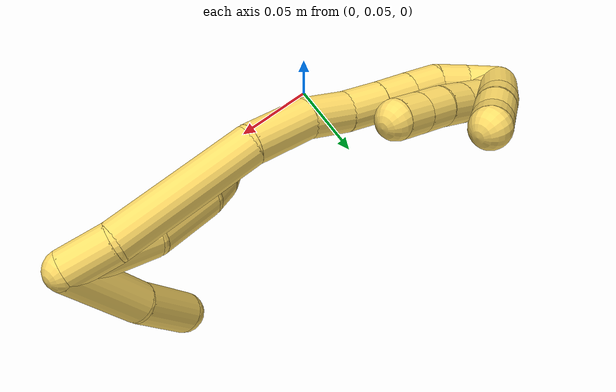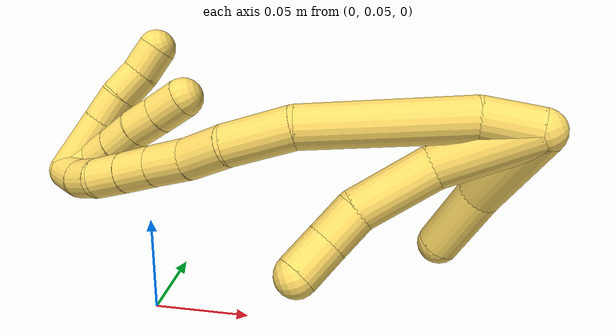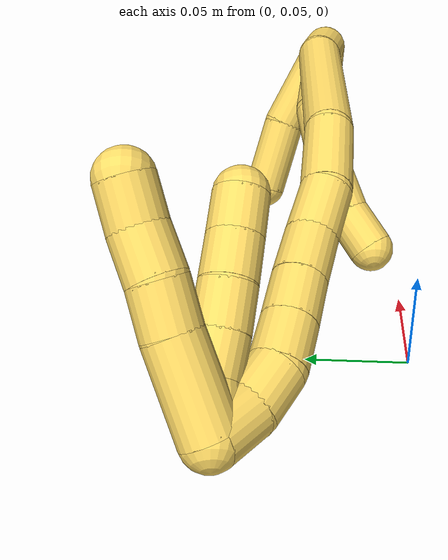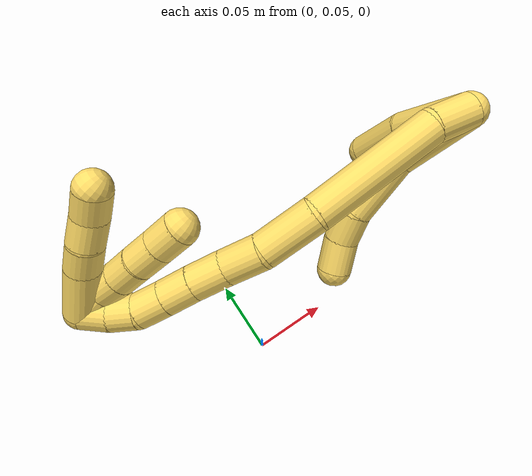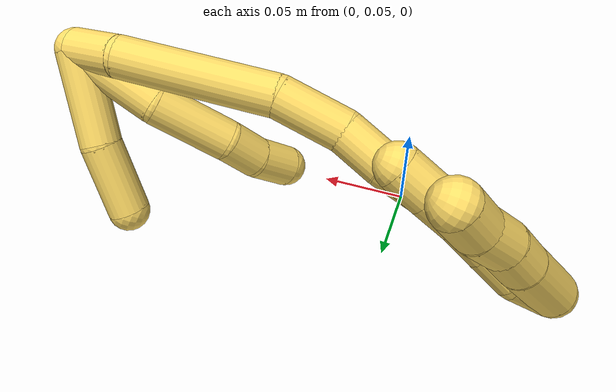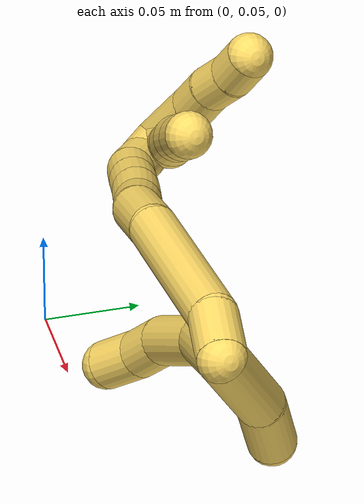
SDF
<sdf version="1.7">
 <world name="default">
  <model name="5">
   <static>0</static>
   <link name="5">
    <collision name="collision-cylinder-e_1_2_8">
     <pose>-0.002029 0.005398 -0.027162 -2.94541 -0.07314 0.711881</pose>
     <geometry><cylinder><radius>0.0125</radius><length>0.055536</length></cylinder></geometry>
     <surface>
      <friction><ode><mu>1.16</mu><mu2>1.16</mu2><slip1>0</slip1><slip2>0</slip2></ode></friction>
      <contact><ode><kp>1e+06</kp><kd>1</kd><max_vel>0</max_vel><min_depth>0.001</min_depth></ode></contact>
     </surface>
    </collision>
    <visual name="visual-cylinder-e_1_2_8">
     <pose>-0.002029 0.005398 -0.027162 -2.94541 -0.07314 0.711881</pose>
     <geometry><cylinder><radius>0.0125</radius><length>0.055536</length></cylinder></geometry>
     <material><ambient>1 0.858824 0.4 1</ambient></material>
    </visual>
    <collision name="collision-cylinder-e_2_8_9">
     <pose>-6.4e-05 0.010925 -0.077373 -3.13603 0.171599 -3.07697</pose>
     <geometry><cylinder><radius>0.0125</radius><length>0.046783</length></cylinder></geometry>
     <surface>
      <friction><ode><mu>1.16</mu><mu2>1.16</mu2><slip1>0</slip1><slip2>0</slip2></ode></friction>
      <contact><ode><kp>1e+06</kp><kd>1</kd><max_vel>0</max_vel><min_depth>0.001</min_depth></ode></contact>
     </surface>
    </collision>
    <visual name="visual-cylinder-e_2_8_9">
     <pose>-6.4e-05 0.010925 -0.077373 -3.13603 0.171599 -3.07697</pose>
     <geometry><cylinder><radius>0.0125</radius><length>0.046783</length></cylinder></geometry>
     <material><ambient>1 0.858824 0.4 1</ambient></material>
    </visual>
    <collision name="collision-cylinder-e_3_9_10">
     <pose>0.009399 0.010904 -0.110755 3.12715 0.486661 3.08343</pose>
     <geometry><cylinder><radius>0.0125</radius><length>0.023387</length></cylinder></geometry>
     <surface>
      <friction><ode><mu>1.16</mu><mu2>1.16</mu2><slip1>0</slip1><slip2>0</slip2></ode></friction>
      <contact><ode><kp>1e+06</kp><kd>1</kd><max_vel>0</max_vel><min_depth>0.001</min_depth></ode></contact>
     </surface>
    </collision>
    <visual name="visual-cylinder-e_3_9_10">
     <pose>0.009399 0.010904 -0.110755 3.12715 0.486661 3.08343</pose>
     <geometry><cylinder><radius>0.0125</radius><length>0.023387</length></cylinder></geometry>
     <material><ambient>1 0.858824 0.4 1</ambient></material>
    </visual>
    <collision name="collision-cylinder-e_4_10_6">
     <pose>0.020965 0.007948 -0.131214 2.87119 0.525831 2.20566</pose>
     <geometry><cylinder><radius>0.0125</radius><length>0.024294</length></cylinder></geometry>
     <surface>
      <friction><ode><mu>1.16</mu><mu2>1.16</mu2><slip1>0</slip1><slip2>0</slip2></ode></friction>
      <contact><ode><kp>1e+06</kp><kd>1</kd><max_vel>0</max_vel><min_depth>0.001</min_depth></ode></contact>
     </surface>
    </collision>
    <visual name="visual-cylinder-e_4_10_6">
     <pose>0.020965 0.007948 -0.131214 2.87119 0.525831 2.20566</pose>
     <geometry><cylinder><radius>0.0125</radius><length>0.024294</length></cylinder></geometry>
     <material><ambient>1 0.858824 0.4 1</ambient></material>
    </visual>
    <collision name="collision-cylinder-e_1_2_11">
     <pose>0.006256 0.021532 -0.017381 -2.24993 0.222337 -0.45891</pose>
     <geometry><cylinder><radius>0.0125</radius><length>0.05674</length></cylinder></geometry>
     <surface>
      <friction><ode><mu>1.16</mu><mu2>1.16</mu2><slip1>0</slip1><slip2>0</slip2></ode></friction>
      <contact><ode><kp>1e+06</kp><kd>1</kd><max_vel>0</max_vel><min_depth>0.001</min_depth></ode></contact>
     </surface>
    </collision>
    <visual name="visual-cylinder-e_1_2_11">
     <pose>0.006256 0.021532 -0.017381 -2.24993 0.222337 -0.45891</pose>
     <geometry><cylinder><radius>0.0125</radius><length>0.05674</length></cylinder></geometry>
     <material><ambient>1 0.858824 0.4 1</ambient></material>
    </visual>
    <collision name="collision-cylinder-e_2_11_5">
     <pose>0.020015 0.056678 -0.049802 -2.40593 0.354279 -0.869741</pose>
     <geometry><cylinder><radius>0.0125</radius><length>0.04326</length></cylinder></geometry>
     <surface>
      <friction><ode><mu>1.16</mu><mu2>1.16</mu2><slip1>0</slip1><slip2>0</slip2></ode></friction>
      <contact><ode><kp>1e+06</kp><kd>1</kd><max_vel>0</max_vel><min_depth>0.001</min_depth></ode></contact>
     </surface>
    </collision>
    <visual name="visual-cylinder-e_2_11_5">
     <pose>0.020015 0.056678 -0.049802 -2.40593 0.354279 -0.869741</pose>
     <geometry><cylinder><radius>0.0125</radius><length>0.04326</length></cylinder></geometry>
     <material><ambient>1 0.858824 0.4 1</ambient></material>
    </visual>
    <collision name="collision-cylinder-e_1_2_12">
     <pose>-0.008344 -0.000999 -0.012711 3.06314 -0.579495 -2.87983</pose>
     <geometry><cylinder><radius>0.0125</radius><length>0.030475</length></cylinder></geometry>
     <surface>
      <friction><ode><mu>1.16</mu><mu2>1.16</mu2><slip1>0</slip1><slip2>0</slip2></ode></friction>
      <contact><ode><kp>1e+06</kp><kd>1</kd><max_vel>0</max_vel><min_depth>0.001</min_depth></ode></contact>
     </surface>
    </collision>
    <visual name="visual-cylinder-e_1_2_12">
     <pose>-0.008344 -0.000999 -0.012711 3.06314 -0.579495 -2.87983</pose>
     <geometry><cylinder><radius>0.0125</radius><length>0.030475</length></cylinder></geometry>
     <material><ambient>1 0.858824 0.4 1</ambient></material>
    </visual>
    <collision name="collision-cylinder-e_2_12_13">
     <pose>-0.030648 -0.007201 -0.070048 3.02554 -0.301256 -2.4105</pose>
     <geometry><cylinder><radius>0.0125</radius><length>0.094095</length></cylinder></geometry>
     <surface>
      <friction><ode><mu>1.16</mu><mu2>1.16</mu2><slip1>0</slip1><slip2>0</slip2></ode></friction>
      <contact><ode><kp>1e+06</kp><kd>1</kd><max_vel>0</max_vel><min_depth>0.001</min_depth></ode></contact>
     </surface>
    </collision>
    <visual name="visual-cylinder-e_2_12_13">
     <pose>-0.030648 -0.007201 -0.070048 3.02554 -0.301256 -2.4105</pose>
     <geometry><cylinder><radius>0.0125</radius><length>0.094095</length></cylinder></geometry>
     <material><ambient>1 0.858824 0.4 1</ambient></material>
    </visual>
    <collision name="collision-cylinder-e_3_13_14">
     <pose>-0.047543 -0.010558 -0.134557 -3.04907 -0.145937 2.01244</pose>
     <geometry><cylinder><radius>0.0125</radius><length>0.040365</length></cylinder></geometry>
     <surface>
      <friction><ode><mu>1.16</mu><mu2>1.16</mu2><slip1>0</slip1><slip2>0</slip2></ode></friction>
      <contact><ode><kp>1e+06</kp><kd>1</kd><max_vel>0</max_vel><min_depth>0.001</min_depth></ode></contact>
     </surface>
    </collision>
    <visual name="visual-cylinder-e_3_13_14">
     <pose>-0.047543 -0.010558 -0.134557 -3.04907 -0.145937 2.01244</pose>
     <geometry><cylinder><radius>0.0125</radius><length>0.040365</length></cylinder></geometry>
     <material><ambient>1 0.858824 0.4 1</ambient></material>
    </visual>
    <collision name="collision-cylinder-e_4_14_15">
     <pose>-0.052534 -0.004258 -0.167284 -2.80773 -0.150105 0.839475</pose>
     <geometry><cylinder><radius>0.0125</radius><length>0.027501</length></cylinder></geometry>
     <surface>
      <friction><ode><mu>1.16</mu><mu2>1.16</mu2><slip1>0</slip1><slip2>0</slip2></ode></friction>
      <contact><ode><kp>1e+06</kp><kd>1</kd><max_vel>0</max_vel><min_depth>0.001</min_depth></ode></contact>
     </surface>
    </collision>
    <visual name="visual-cylinder-e_4_14_15">
     <pose>-0.052534 -0.004258 -0.167284 -2.80773 -0.150105 0.839475</pose>
     <geometry><cylinder><radius>0.0125</radius><length>0.027501</length></cylinder></geometry>
     <material><ambient>1 0.858824 0.4 1</ambient></material>
    </visual>
    <collision name="collision-cylinder-e_5_15_16">
     <pose>-0.057492 0.002913 -0.191772 -2.91239 -0.238108 1.60925</pose>
     <geometry><cylinder><radius>0.0125</radius><length>0.024605</length></cylinder></geometry>
     <surface>
      <friction><ode><mu>1.16</mu><mu2>1.16</mu2><slip1>0</slip1><slip2>0</slip2></ode></friction>
      <contact><ode><kp>1e+06</kp><kd>1</kd><max_vel>0</max_vel><min_depth>0.001</min_depth></ode></contact>
     </surface>
    </collision>
    <visual name="visual-cylinder-e_5_15_16">
     <pose>-0.057492 0.002913 -0.191772 -2.91239 -0.238108 1.60925</pose>
     <geometry><cylinder><radius>0.0125</radius><length>0.024605</length></cylinder></geometry>
     <material><ambient>1 0.858824 0.4 1</ambient></material>
    </visual>
    <collision name="collision-cylinder-e_6_16_17">
     <pose>-0.062691 0.007792 -0.213849 -2.93727 -0.212289 1.6093</pose>
     <geometry><cylinder><radius>0.0125</radius><length>0.021803</length></cylinder></geometry>
     <surface>
      <friction><ode><mu>1.16</mu><mu2>1.16</mu2><slip1>0</slip1><slip2>0</slip2></ode></friction>
      <contact><ode><kp>1e+06</kp><kd>1</kd><max_vel>0</max_vel><min_depth>0.001</min_depth></ode></contact>
     </surface>
    </collision>
    <visual name="visual-cylinder-e_6_16_17">
     <pose>-0.062691 0.007792 -0.213849 -2.93727 -0.212289 1.6093</pose>
     <geometry><cylinder><radius>0.0125</radius><length>0.021803</length></cylinder></geometry>
     <material><ambient>1 0.858824 0.4 1</ambient></material>
    </visual>
    <collision name="collision-cylinder-e_7_17_18">
     <pose>-0.067407 0.012162 -0.234291 -2.9244 -0.231811 1.63643</pose>
     <geometry><cylinder><radius>0.0125</radius><length>0.021059</length></cylinder></geometry>
     <surface>
      <friction><ode><mu>1.16</mu><mu2>1.16</mu2><slip1>0</slip1><slip2>0</slip2></ode></friction>
      <contact><ode><kp>1e+06</kp><kd>1</kd><max_vel>0</max_vel><min_depth>0.001</min_depth></ode></contact>
     </surface>
    </collision>
    <visual name="visual-cylinder-e_7_17_18">
     <pose>-0.067407 0.012162 -0.234291 -2.9244 -0.231811 1.63643</pose>
     <geometry><cylinder><radius>0.0125</radius><length>0.021059</length></cylinder></geometry>
     <material><ambient>1 0.858824 0.4 1</ambient></material>
    </visual>
    <collision name="collision-cylinder-e_8_18_19">
     <pose>-0.073732 0.018988 -0.252295 -2.61799 -0.400215 1.29586</pose>
     <geometry><cylinder><radius>0.0125</radius><length>0.020053</length></cylinder></geometry>
     <surface>
      <friction><ode><mu>1.16</mu><mu2>1.16</mu2><slip1>0</slip1><slip2>0</slip2></ode></friction>
      <contact><ode><kp>1e+06</kp><kd>1</kd><max_vel>0</max_vel><min_depth>0.001</min_depth></ode></contact>
     </surface>
    </collision>
    <visual name="visual-cylinder-e_8_18_19">
     <pose>-0.073732 0.018988 -0.252295 -2.61799 -0.400215 1.29586</pose>
     <geometry><cylinder><radius>0.0125</radius><length>0.020053</length></cylinder></geometry>
     <material><ambient>1 0.858824 0.4 1</ambient></material>
    </visual>
    <collision name="collision-cylinder-e_9_19_1">
     <pose>-0.083984 0.028094 -0.26662 -2.52451 -0.685568 1.68362</pose>
     <geometry><cylinder><radius>0.0125</radius><length>0.020045</length></cylinder></geometry>
     <surface>
      <friction><ode><mu>1.16</mu><mu2>1.16</mu2><slip1>0</slip1><slip2>0</slip2></ode></friction>
      <contact><ode><kp>1e+06</kp><kd>1</kd><max_vel>0</max_vel><min_depth>0.001</min_depth></ode></contact>
     </surface>
    </collision>
    <visual name="visual-cylinder-e_9_19_1">
     <pose>-0.083984 0.028094 -0.26662 -2.52451 -0.685568 1.68362</pose>
     <geometry><cylinder><radius>0.0125</radius><length>0.020045</length></cylinder></geometry>
     <material><ambient>1 0.858824 0.4 1</ambient></material>
    </visual>
    <collision name="collision-cylinder-e_1_1_20">
     <pose>-0.090443 0.032527 -0.262948 0.005633 -0.011394 -3.2e-05</pose>
     <geometry><cylinder><radius>0.0125</radius><length>0.02</length></cylinder></geometry>
     <surface>
      <friction><ode><mu>1.16</mu><mu2>1.16</mu2><slip1>0</slip1><slip2>0</slip2></ode></friction>
      <contact><ode><kp>1e+06</kp><kd>1</kd><max_vel>0</max_vel><min_depth>0.001</min_depth></ode></contact>
     </surface>
    </collision>
    <visual name="visual-cylinder-e_1_1_20">
     <pose>-0.090443 0.032527 -0.262948 0.005633 -0.011394 -3.2e-05</pose>
     <geometry><cylinder><radius>0.0125</radius><length>0.02</length></cylinder></geometry>
     <material><ambient>1 0.858824 0.4 1</ambient></material>
    </visual>
    <collision name="collision-cylinder-e_2_20_21">
     <pose>-0.091072 0.029165 -0.243525 0.337415 -0.05148 -0.00877</pose>
     <geometry><cylinder><radius>0.0125</radius><length>0.02</length></cylinder></geometry>
     <surface>
      <friction><ode><mu>1.16</mu><mu2>1.16</mu2><slip1>0</slip1><slip2>0</slip2></ode></friction>
      <contact><ode><kp>1e+06</kp><kd>1</kd><max_vel>0</max_vel><min_depth>0.001</min_depth></ode></contact>
     </surface>
    </collision>
    <visual name="visual-cylinder-e_2_20_21">
     <pose>-0.091072 0.029165 -0.243525 0.337415 -0.05148 -0.00877</pose>
     <geometry><cylinder><radius>0.0125</radius><length>0.02</length></cylinder></geometry>
     <material><ambient>1 0.858824 0.4 1</ambient></material>
    </visual>
    <collision name="collision-cylinder-e_3_21_22">
     <pose>-0.092763 0.022697 -0.224688 0.324058 -0.117907 -0.019295</pose>
     <geometry><cylinder><radius>0.0125</radius><length>0.02</length></cylinder></geometry>
     <surface>
      <friction><ode><mu>1.16</mu><mu2>1.16</mu2><slip1>0</slip1><slip2>0</slip2></ode></friction>
      <contact><ode><kp>1e+06</kp><kd>1</kd><max_vel>0</max_vel><min_depth>0.001</min_depth></ode></contact>
     </surface>
    </collision>
    <visual name="visual-cylinder-e_3_21_22">
     <pose>-0.092763 0.022697 -0.224688 0.324058 -0.117907 -0.019295</pose>
     <geometry><cylinder><radius>0.0125</radius><length>0.02</length></cylinder></geometry>
     <material><ambient>1 0.858824 0.4 1</ambient></material>
    </visual>
    <collision name="collision-cylinder-e_4_22_23">
     <pose>-0.09444 0.01703 -0.205605 0.25345 -0.050151 -0.006391</pose>
     <geometry><cylinder><radius>0.0125</radius><length>0.02</length></cylinder></geometry>
     <surface>
      <friction><ode><mu>1.16</mu><mu2>1.16</mu2><slip1>0</slip1><slip2>0</slip2></ode></friction>
      <contact><ode><kp>1e+06</kp><kd>1</kd><max_vel>0</max_vel><min_depth>0.001</min_depth></ode></contact>
     </surface>
    </collision>
    <visual name="visual-cylinder-e_4_22_23">
     <pose>-0.09444 0.01703 -0.205605 0.25345 -0.050151 -0.006391</pose>
     <geometry><cylinder><radius>0.0125</radius><length>0.02</length></cylinder></geometry>
     <material><ambient>1 0.858824 0.4 1</ambient></material>
    </visual>
    <collision name="collision-cylinder-e_5_23_4">
     <pose>-0.095662 0.011962 -0.186298 0.259933 -0.072076 -0.009425</pose>
     <geometry><cylinder><radius>0.0125</radius><length>0.02</length></cylinder></geometry>
     <surface>
      <friction><ode><mu>1.16</mu><mu2>1.16</mu2><slip1>0</slip1><slip2>0</slip2></ode></friction>
      <contact><ode><kp>1e+06</kp><kd>1</kd><max_vel>0</max_vel><min_depth>0.001</min_depth></ode></contact>
     </surface>
    </collision>
    <visual name="visual-cylinder-e_5_23_4">
     <pose>-0.095662 0.011962 -0.186298 0.259933 -0.072076 -0.009425</pose>
     <geometry><cylinder><radius>0.0125</radius><length>0.02</length></cylinder></geometry>
     <material><ambient>1 0.858824 0.4 1</ambient></material>
    </visual>
    <collision name="collision-cylinder-e_1_1_24">
     <pose>-0.102114 0.03199 -0.257336 0.038014 -0.646255 -0.012731</pose>
     <geometry><cylinder><radius>0.0125</radius><length>0.039137</length></cylinder></geometry>
     <surface>
      <friction><ode><mu>1.16</mu><mu2>1.16</mu2><slip1>0</slip1><slip2>0</slip2></ode></friction>
      <contact><ode><kp>1e+06</kp><kd>1</kd><max_vel>0</max_vel><min_depth>0.001</min_depth></ode></contact>
     </surface>
    </collision>
    <visual name="visual-cylinder-e_1_1_24">
     <pose>-0.102114 0.03199 -0.257336 0.038014 -0.646255 -0.012731</pose>
     <geometry><cylinder><radius>0.0125</radius><length>0.039137</length></cylinder></geometry>
     <material><ambient>1 0.858824 0.4 1</ambient></material>
    </visual>
    <collision name="collision-cylinder-e_2_24_25">
     <pose>-0.119593 0.030394 -0.233371 0.119398 -0.595108 -0.036654</pose>
     <geometry><cylinder><radius>0.0125</radius><length>0.02032</length></cylinder></geometry>
     <surface>
      <friction><ode><mu>1.16</mu><mu2>1.16</mu2><slip1>0</slip1><slip2>0</slip2></ode></friction>
      <contact><ode><kp>1e+06</kp><kd>1</kd><max_vel>0</max_vel><min_depth>0.001</min_depth></ode></contact>
     </surface>
    </collision>
    <visual name="visual-cylinder-e_2_24_25">
     <pose>-0.119593 0.030394 -0.233371 0.119398 -0.595108 -0.036654</pose>
     <geometry><cylinder><radius>0.0125</radius><length>0.02032</length></cylinder></geometry>
     <material><ambient>1 0.858824 0.4 1</ambient></material>
    </visual>
    <collision name="collision-cylinder-e_3_25_26">
     <pose>-0.130396 0.029861 -0.216133 -0.052747 -0.521105 0.014066</pose>
     <geometry><cylinder><radius>0.0125</radius><length>0.020516</length></cylinder></geometry>
     <surface>
      <friction><ode><mu>1.16</mu><mu2>1.16</mu2><slip1>0</slip1><slip2>0</slip2></ode></friction>
      <contact><ode><kp>1e+06</kp><kd>1</kd><max_vel>0</max_vel><min_depth>0.001</min_depth></ode></contact>
     </surface>
    </collision>
    <visual name="visual-cylinder-e_3_25_26">
     <pose>-0.130396 0.029861 -0.216133 -0.052747 -0.521105 0.014066</pose>
     <geometry><cylinder><radius>0.0125</radius><length>0.020516</length></cylinder></geometry>
     <material><ambient>1 0.858824 0.4 1</ambient></material>
    </visual>
    <collision name="collision-cylinder-e_4_26_3">
     <pose>-0.141201 0.029298 -0.19908 0.125642 -0.605313 -0.039278</pose>
     <geometry><cylinder><radius>0.0125</radius><length>0.020027</length></cylinder></geometry>
     <surface>
      <friction><ode><mu>1.16</mu><mu2>1.16</mu2><slip1>0</slip1><slip2>0</slip2></ode></friction>
      <contact><ode><kp>1e+06</kp><kd>1</kd><max_vel>0</max_vel><min_depth>0.001</min_depth></ode></contact>
     </surface>
    </collision>
    <visual name="visual-cylinder-e_4_26_3">
     <pose>-0.141201 0.029298 -0.19908 0.125642 -0.605313 -0.039278</pose>
     <geometry><cylinder><radius>0.0125</radius><length>0.020027</length></cylinder></geometry>
     <material><ambient>1 0.858824 0.4 1</ambient></material>
    </visual>
    <collision name="collision-sphere-3">
     <pose>-0.146899 0.028266 -0.190911 0 -0 0</pose>
     <geometry><sphere><radius>0.0125</radius></sphere></geometry>
     <surface>
      <friction><ode><mu>1.16</mu><mu2>1.16</mu2><slip1>0</slip1><slip2>0</slip2></ode></friction>
      <contact><ode><kp>1e+06</kp><kd>1</kd><max_vel>0</max_vel><min_depth>0.001</min_depth></ode></contact>
     </surface>
    </collision>
    <visual name="visual-sphere-3">
     <pose>-0.146899 0.028266 -0.190911 0 -0 0</pose>
     <geometry><sphere><radius>0.0125</radius></sphere></geometry>
     <material><ambient>1 0.858824 0.4 1</ambient></material>
    </visual>
    <collision name="collision-sphere-26">
     <pose>-0.135503 0.03033 -0.207249 0 -0 0</pose>
     <geometry><sphere><radius>0.0125</radius></sphere></geometry>
     <surface>
      <friction><ode><mu>1.16</mu><mu2>1.16</mu2><slip1>0</slip1><slip2>0</slip2></ode></friction>
      <contact><ode><kp>1e+06</kp><kd>1</kd><max_vel>0</max_vel><min_depth>0.001</min_depth></ode></contact>
     </surface>
    </collision>
    <visual name="visual-sphere-26">
     <pose>-0.135503 0.03033 -0.207249 0 -0 0</pose>
     <geometry><sphere><radius>0.0125</radius></sphere></geometry>
     <material><ambient>1 0.858824 0.4 1</ambient></material>
    </visual>
    <collision name="collision-sphere-25">
     <pose>-0.125289 0.029392 -0.225018 0 -0 0</pose>
     <geometry><sphere><radius>0.0125</radius></sphere></geometry>
     <surface>
      <friction><ode><mu>1.16</mu><mu2>1.16</mu2><slip1>0</slip1><slip2>0</slip2></ode></friction>
      <contact><ode><kp>1e+06</kp><kd>1</kd><max_vel>0</max_vel><min_depth>0.001</min_depth></ode></contact>
     </surface>
    </collision>
    <visual name="visual-sphere-25">
     <pose>-0.125289 0.029392 -0.225018 0 -0 0</pose>
     <geometry><sphere><radius>0.0125</radius></sphere></geometry>
     <material><ambient>1 0.858824 0.4 1</ambient></material>
    </visual>
    <collision name="collision-sphere-24">
     <pose>-0.113898 0.031396 -0.241725 0 -0 0</pose>
     <geometry><sphere><radius>0.0125</radius></sphere></geometry>
     <surface>
      <friction><ode><mu>1.16</mu><mu2>1.16</mu2><slip1>0</slip1><slip2>0</slip2></ode></friction>
      <contact><ode><kp>1e+06</kp><kd>1</kd><max_vel>0</max_vel><min_depth>0.001</min_depth></ode></contact>
     </surface>
    </collision>
    <visual name="visual-sphere-24">
     <pose>-0.113898 0.031396 -0.241725 0 -0 0</pose>
     <geometry><sphere><radius>0.0125</radius></sphere></geometry>
     <material><ambient>1 0.858824 0.4 1</ambient></material>
    </visual>
    <collision name="collision-sphere-4">
     <pose>-0.096382 0.009399 -0.176659 0 -0 0</pose>
     <geometry><sphere><radius>0.0125</radius></sphere></geometry>
     <surface>
      <friction><ode><mu>1.16</mu><mu2>1.16</mu2><slip1>0</slip1><slip2>0</slip2></ode></friction>
      <contact><ode><kp>1e+06</kp><kd>1</kd><max_vel>0</max_vel><min_depth>0.001</min_depth></ode></contact>
     </surface>
    </collision>
    <visual name="visual-sphere-4">
     <pose>-0.096382 0.009399 -0.176659 0 -0 0</pose>
     <geometry><sphere><radius>0.0125</radius></sphere></geometry>
     <material><ambient>1 0.858824 0.4 1</ambient></material>
    </visual>
    <collision name="collision-sphere-23">
     <pose>-0.094942 0.014526 -0.195937 0 -0 0</pose>
     <geometry><sphere><radius>0.0125</radius></sphere></geometry>
     <surface>
      <friction><ode><mu>1.16</mu><mu2>1.16</mu2><slip1>0</slip1><slip2>0</slip2></ode></friction>
      <contact><ode><kp>1e+06</kp><kd>1</kd><max_vel>0</max_vel><min_depth>0.001</min_depth></ode></contact>
     </surface>
    </collision>
    <visual name="visual-sphere-23">
     <pose>-0.094942 0.014526 -0.195937 0 -0 0</pose>
     <geometry><sphere><radius>0.0125</radius></sphere></geometry>
     <material><ambient>1 0.858824 0.4 1</ambient></material>
    </visual>
    <collision name="collision-sphere-22">
     <pose>-0.093939 0.019534 -0.215274 0 -0 0</pose>
     <geometry><sphere><radius>0.0125</radius></sphere></geometry>
     <surface>
      <friction><ode><mu>1.16</mu><mu2>1.16</mu2><slip1>0</slip1><slip2>0</slip2></ode></friction>
      <contact><ode><kp>1e+06</kp><kd>1</kd><max_vel>0</max_vel><min_depth>0.001</min_depth></ode></contact>
     </surface>
    </collision>
    <visual name="visual-sphere-22">
     <pose>-0.093939 0.019534 -0.215274 0 -0 0</pose>
     <geometry><sphere><radius>0.0125</radius></sphere></geometry>
     <material><ambient>1 0.858824 0.4 1</ambient></material>
    </visual>
    <collision name="collision-sphere-21">
     <pose>-0.091586 0.025859 -0.234101 0 -0 0</pose>
     <geometry><sphere><radius>0.0125</radius></sphere></geometry>
     <surface>
      <friction><ode><mu>1.16</mu><mu2>1.16</mu2><slip1>0</slip1><slip2>0</slip2></ode></friction>
      <contact><ode><kp>1e+06</kp><kd>1</kd><max_vel>0</max_vel><min_depth>0.001</min_depth></ode></contact>
     </surface>
    </collision>
    <visual name="visual-sphere-21">
     <pose>-0.091586 0.025859 -0.234101 0 -0 0</pose>
     <geometry><sphere><radius>0.0125</radius></sphere></geometry>
     <material><ambient>1 0.858824 0.4 1</ambient></material>
    </visual>
    <collision name="collision-sphere-20">
     <pose>-0.090557 0.032471 -0.252948 0 -0 0</pose>
     <geometry><sphere><radius>0.0125</radius></sphere></geometry>
     <surface>
      <friction><ode><mu>1.16</mu><mu2>1.16</mu2><slip1>0</slip1><slip2>0</slip2></ode></friction>
      <contact><ode><kp>1e+06</kp><kd>1</kd><max_vel>0</max_vel><min_depth>0.001</min_depth></ode></contact>
     </surface>
    </collision>
    <visual name="visual-sphere-20">
     <pose>-0.090557 0.032471 -0.252948 0 -0 0</pose>
     <geometry><sphere><radius>0.0125</radius></sphere></geometry>
     <material><ambient>1 0.858824 0.4 1</ambient></material>
    </visual>
    <collision name="collision-sphere-11">
     <pose>0.012512 0.043064 -0.034762 0 -0 0</pose>
     <geometry><sphere><radius>0.0125</radius></sphere></geometry>
     <surface>
      <friction><ode><mu>1.16</mu><mu2>1.16</mu2><slip1>0</slip1><slip2>0</slip2></ode></friction>
      <contact><ode><kp>1e+06</kp><kd>1</kd><max_vel>0</max_vel><min_depth>0.001</min_depth></ode></contact>
     </surface>
    </collision>
    <visual name="visual-sphere-11">
     <pose>0.012512 0.043064 -0.034762 0 -0 0</pose>
     <geometry><sphere><radius>0.0125</radius></sphere></geometry>
     <material><ambient>1 0.858824 0.4 1</ambient></material>
    </visual>
    <collision name="collision-sphere-6">
     <pose>0.027062 0.005142 -0.141338 0 -0 0</pose>
     <geometry><sphere><radius>0.0125</radius></sphere></geometry>
     <surface>
      <friction><ode><mu>1.16</mu><mu2>1.16</mu2><slip1>0</slip1><slip2>0</slip2></ode></friction>
      <contact><ode><kp>1e+06</kp><kd>1</kd><max_vel>0</max_vel><min_depth>0.001</min_depth></ode></contact>
     </surface>
    </collision>
    <visual name="visual-sphere-6">
     <pose>0.027062 0.005142 -0.141338 0 -0 0</pose>
     <geometry><sphere><radius>0.0125</radius></sphere></geometry>
     <material><ambient>1 0.858824 0.4 1</ambient></material>
    </visual>
    <collision name="collision-sphere-10">
     <pose>0.014868 0.010754 -0.12109 0 -0 0</pose>
     <geometry><sphere><radius>0.0125</radius></sphere></geometry>
     <surface>
      <friction><ode><mu>1.16</mu><mu2>1.16</mu2><slip1>0</slip1><slip2>0</slip2></ode></friction>
      <contact><ode><kp>1e+06</kp><kd>1</kd><max_vel>0</max_vel><min_depth>0.001</min_depth></ode></contact>
     </surface>
    </collision>
    <visual name="visual-sphere-10">
     <pose>0.014868 0.010754 -0.12109 0 -0 0</pose>
     <geometry><sphere><radius>0.0125</radius></sphere></geometry>
     <material><ambient>1 0.858824 0.4 1</ambient></material>
    </visual>
    <collision name="collision-sphere-9">
     <pose>0.00393 0.011053 -0.10042 0 -0 0</pose>
     <geometry><sphere><radius>0.0125</radius></sphere></geometry>
     <surface>
      <friction><ode><mu>1.16</mu><mu2>1.16</mu2><slip1>0</slip1><slip2>0</slip2></ode></friction>
      <contact><ode><kp>1e+06</kp><kd>1</kd><max_vel>0</max_vel><min_depth>0.001</min_depth></ode></contact>
     </surface>
    </collision>
    <visual name="visual-sphere-9">
     <pose>0.00393 0.011053 -0.10042 0 -0 0</pose>
     <geometry><sphere><radius>0.0125</radius></sphere></geometry>
     <material><ambient>1 0.858824 0.4 1</ambient></material>
    </visual>
    <collision name="collision-sphere-2">
     <geometry><sphere><radius>0.0125</radius></sphere></geometry>
     <surface>
      <friction><ode><mu>1.16</mu><mu2>1.16</mu2><slip1>0</slip1><slip2>0</slip2></ode></friction>
      <contact><ode><kp>1e+06</kp><kd>1</kd><max_vel>0</max_vel><min_depth>0.001</min_depth></ode></contact>
     </surface>
    </collision>
    <visual name="visual-sphere-2">
     <geometry><sphere><radius>0.0125</radius></sphere></geometry>
     <material><ambient>1 0.858824 0.4 1</ambient></material>
    </visual>
    <collision name="collision-sphere-19">
     <pose>-0.077639 0.023605 -0.260292 0 -0 0</pose>
     <geometry><sphere><radius>0.0125</radius></sphere></geometry>
     <surface>
      <friction><ode><mu>1.16</mu><mu2>1.16</mu2><slip1>0</slip1><slip2>0</slip2></ode></friction>
      <contact><ode><kp>1e+06</kp><kd>1</kd><max_vel>0</max_vel><min_depth>0.001</min_depth></ode></contact>
     </surface>
    </collision>
    <visual name="visual-sphere-19">
     <pose>-0.077639 0.023605 -0.260292 0 -0 0</pose>
     <geometry><sphere><radius>0.0125</radius></sphere></geometry>
     <material><ambient>1 0.858824 0.4 1</ambient></material>
    </visual>
    <collision name="collision-sphere-8">
     <pose>-0.004058 0.010797 -0.054325 0 -0 0</pose>
     <geometry><sphere><radius>0.0125</radius></sphere></geometry>
     <surface>
      <friction><ode><mu>1.16</mu><mu2>1.16</mu2><slip1>0</slip1><slip2>0</slip2></ode></friction>
      <contact><ode><kp>1e+06</kp><kd>1</kd><max_vel>0</max_vel><min_depth>0.001</min_depth></ode></contact>
     </surface>
    </collision>
    <visual name="visual-sphere-8">
     <pose>-0.004058 0.010797 -0.054325 0 -0 0</pose>
     <geometry><sphere><radius>0.0125</radius></sphere></geometry>
     <material><ambient>1 0.858824 0.4 1</ambient></material>
    </visual>
    <collision name="collision-sphere-5">
     <pose>0.027519 0.070292 -0.064843 0 -0 0</pose>
     <geometry><sphere><radius>0.0125</radius></sphere></geometry>
     <surface>
      <friction><ode><mu>1.16</mu><mu2>1.16</mu2><slip1>0</slip1><slip2>0</slip2></ode></friction>
      <contact><ode><kp>1e+06</kp><kd>1</kd><max_vel>0</max_vel><min_depth>0.001</min_depth></ode></contact>
     </surface>
    </collision>
    <visual name="visual-sphere-5">
     <pose>0.027519 0.070292 -0.064843 0 -0 0</pose>
     <geometry><sphere><radius>0.0125</radius></sphere></geometry>
     <material><ambient>1 0.858824 0.4 1</ambient></material>
    </visual>
    <collision name="collision-sphere-12">
     <pose>-0.016688 -0.001998 -0.025421 0 -0 0</pose>
     <geometry><sphere><radius>0.0125</radius></sphere></geometry>
     <surface>
      <friction><ode><mu>1.16</mu><mu2>1.16</mu2><slip1>0</slip1><slip2>0</slip2></ode></friction>
      <contact><ode><kp>1e+06</kp><kd>1</kd><max_vel>0</max_vel><min_depth>0.001</min_depth></ode></contact>
     </surface>
    </collision>
    <visual name="visual-sphere-12">
     <pose>-0.016688 -0.001998 -0.025421 0 -0 0</pose>
     <geometry><sphere><radius>0.0125</radius></sphere></geometry>
     <material><ambient>1 0.858824 0.4 1</ambient></material>
    </visual>
    <collision name="collision-sphere-13">
     <pose>-0.044608 -0.012403 -0.114674 0 -0 0</pose>
     <geometry><sphere><radius>0.0125</radius></sphere></geometry>
     <surface>
      <friction><ode><mu>1.16</mu><mu2>1.16</mu2><slip1>0</slip1><slip2>0</slip2></ode></friction>
      <contact><ode><kp>1e+06</kp><kd>1</kd><max_vel>0</max_vel><min_depth>0.001</min_depth></ode></contact>
     </surface>
    </collision>
    <visual name="visual-sphere-13">
     <pose>-0.044608 -0.012403 -0.114674 0 -0 0</pose>
     <geometry><sphere><radius>0.0125</radius></sphere></geometry>
     <material><ambient>1 0.858824 0.4 1</ambient></material>
    </visual>
    <collision name="collision-sphere-14">
     <pose>-0.050478 -0.008714 -0.154439 0 -0 0</pose>
     <geometry><sphere><radius>0.0125</radius></sphere></geometry>
     <surface>
      <friction><ode><mu>1.16</mu><mu2>1.16</mu2><slip1>0</slip1><slip2>0</slip2></ode></friction>
      <contact><ode><kp>1e+06</kp><kd>1</kd><max_vel>0</max_vel><min_depth>0.001</min_depth></ode></contact>
     </surface>
    </collision>
    <visual name="visual-sphere-14">
     <pose>-0.050478 -0.008714 -0.154439 0 -0 0</pose>
     <geometry><sphere><radius>0.0125</radius></sphere></geometry>
     <material><ambient>1 0.858824 0.4 1</ambient></material>
    </visual>
    <collision name="collision-sphere-15">
     <pose>-0.05459 0.000197 -0.180129 0 -0 0</pose>
     <geometry><sphere><radius>0.0125</radius></sphere></geometry>
     <surface>
      <friction><ode><mu>1.16</mu><mu2>1.16</mu2><slip1>0</slip1><slip2>0</slip2></ode></friction>
      <contact><ode><kp>1e+06</kp><kd>1</kd><max_vel>0</max_vel><min_depth>0.001</min_depth></ode></contact>
     </surface>
    </collision>
    <visual name="visual-sphere-15">
     <pose>-0.05459 0.000197 -0.180129 0 -0 0</pose>
     <geometry><sphere><radius>0.0125</radius></sphere></geometry>
     <material><ambient>1 0.858824 0.4 1</ambient></material>
    </visual>
    <collision name="collision-sphere-16">
     <pose>-0.060394 0.00563 -0.203415 0 -0 0</pose>
     <geometry><sphere><radius>0.0125</radius></sphere></geometry>
     <surface>
      <friction><ode><mu>1.16</mu><mu2>1.16</mu2><slip1>0</slip1><slip2>0</slip2></ode></friction>
      <contact><ode><kp>1e+06</kp><kd>1</kd><max_vel>0</max_vel><min_depth>0.001</min_depth></ode></contact>
     </surface>
    </collision>
    <visual name="visual-sphere-16">
     <pose>-0.060394 0.00563 -0.203415 0 -0 0</pose>
     <geometry><sphere><radius>0.0125</radius></sphere></geometry>
     <material><ambient>1 0.858824 0.4 1</ambient></material>
    </visual>
    <collision name="collision-sphere-17">
     <pose>-0.064988 0.009954 -0.224284 0 -0 0</pose>
     <geometry><sphere><radius>0.0125</radius></sphere></geometry>
     <surface>
      <friction><ode><mu>1.16</mu><mu2>1.16</mu2><slip1>0</slip1><slip2>0</slip2></ode></friction>
      <contact><ode><kp>1e+06</kp><kd>1</kd><max_vel>0</max_vel><min_depth>0.001</min_depth></ode></contact>
     </surface>
    </collision>
    <visual name="visual-sphere-17">
     <pose>-0.064988 0.009954 -0.224284 0 -0 0</pose>
     <geometry><sphere><radius>0.0125</radius></sphere></geometry>
     <material><ambient>1 0.858824 0.4 1</ambient></material>
    </visual>
    <collision name="collision-sphere-18">
     <pose>-0.069826 0.014371 -0.244299 0 -0 0</pose>
     <geometry><sphere><radius>0.0125</radius></sphere></geometry>
     <surface>
      <friction><ode><mu>1.16</mu><mu2>1.16</mu2><slip1>0</slip1><slip2>0</slip2></ode></friction>
      <contact><ode><kp>1e+06</kp><kd>1</kd><max_vel>0</max_vel><min_depth>0.001</min_depth></ode></contact>
     </surface>
    </collision>
    <visual name="visual-sphere-18">
     <pose>-0.069826 0.014371 -0.244299 0 -0 0</pose>
     <geometry><sphere><radius>0.0125</radius></sphere></geometry>
     <material><ambient>1 0.858824 0.4 1</ambient></material>
    </visual>
    <collision name="collision-sphere-1">
     <pose>-0.090329 0.032583 -0.272947 0 -0 0</pose>
     <geometry><sphere><radius>0.0125</radius></sphere></geometry>
     <surface>
      <friction><ode><mu>1.16</mu><mu2>1.16</mu2><slip1>0</slip1><slip2>0</slip2></ode></friction>
      <contact><ode><kp>1e+06</kp><kd>1</kd><max_vel>0</max_vel><min_depth>0.001</min_depth></ode></contact>
     </surface>
    </collision>
    <visual name="visual-sphere-1">
     <pose>-0.090329 0.032583 -0.272947 0 -0 0</pose>
     <geometry><sphere><radius>0.0125</radius></sphere></geometry>
     <material><ambient>1 0.858824 0.4 1</ambient></material>
    </visual>
    <inertial>
     <pose>-0.04433 0.013946 -0.135295 0 -0 0</pose>
     <mass>0.75</mass>
     <inertia>
      <ixx>-6.1e-05</ixx>
      <ixy>0</ixy>
      <ixz>0</ixz>
      <iyy>4.3e-05</iyy>
      <iyz>0</iyz>
      <izz>-1.3e-05</izz>
     </inertia>
    </inertial>
   </link>
   <pose>0.191199 0.091915 0.095259 -0.936917 0.86239 -0.929112</pose>
  </model>
 </world>
</sdf>
